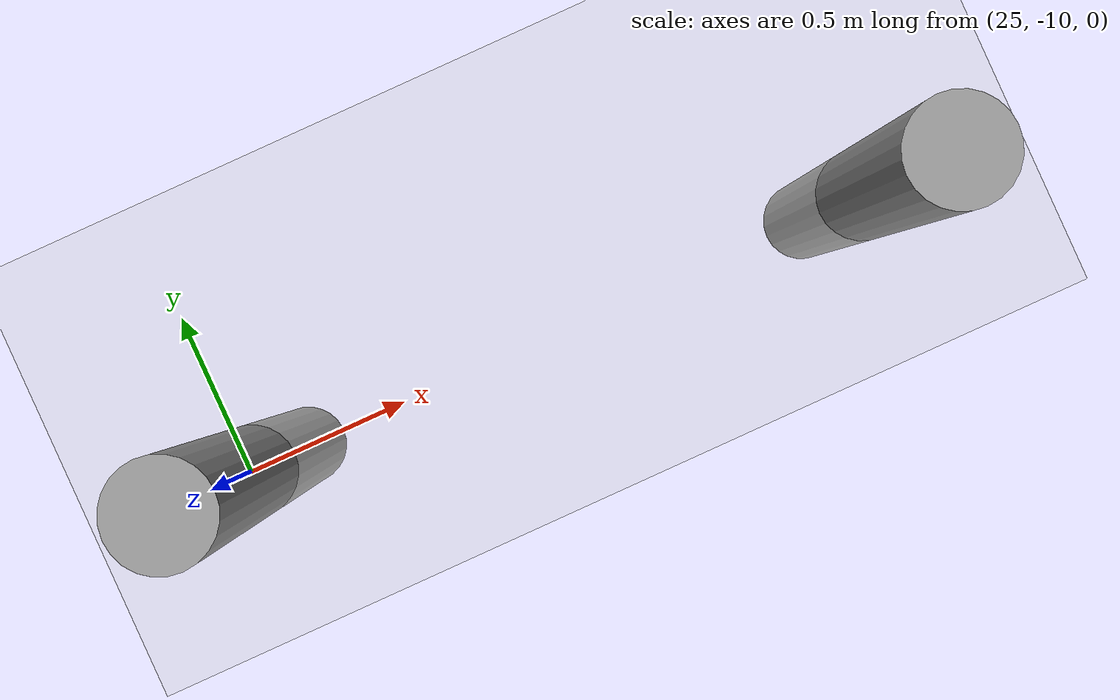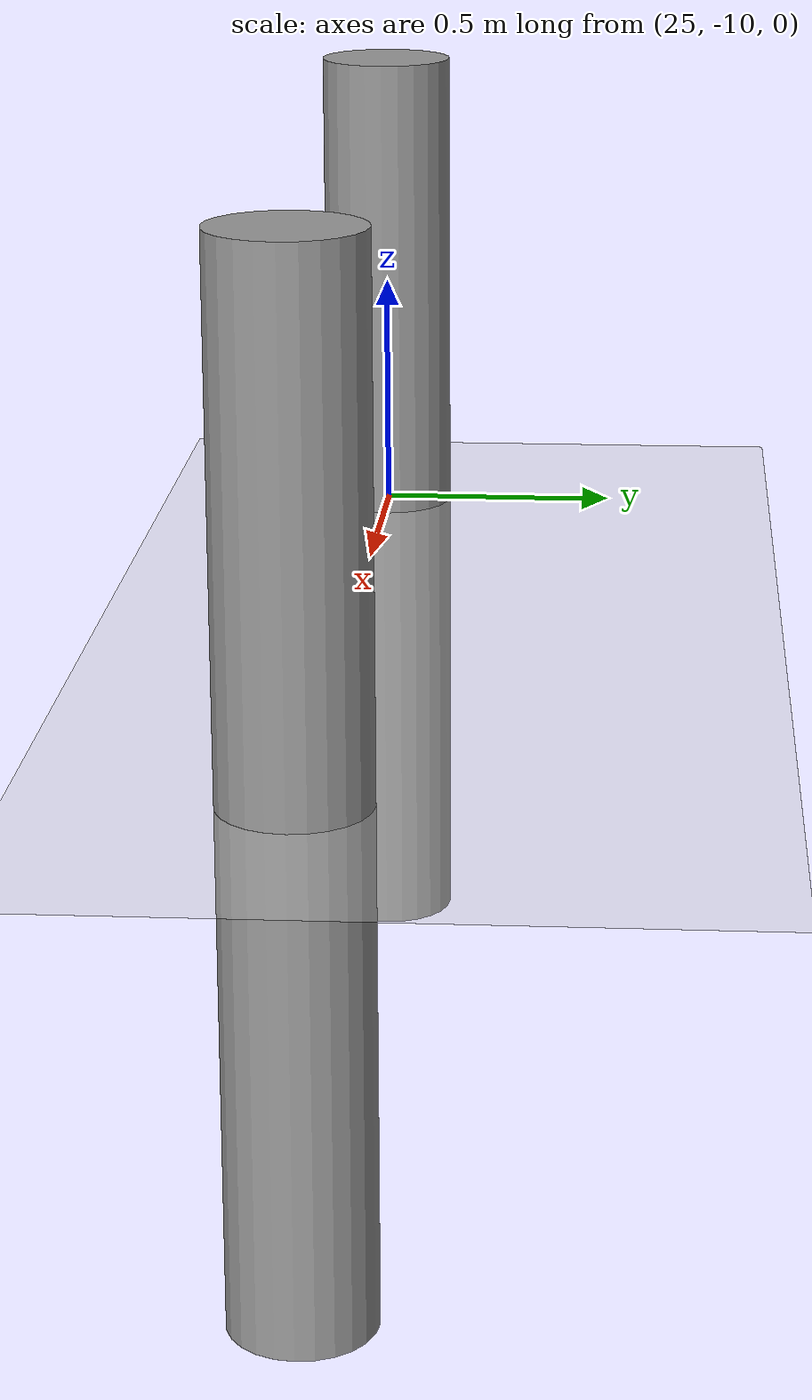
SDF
<sdf version="1.6">
 <world name="default">
  <model name="ground_plane">
   <static>1</static>
   <link name="link">
    <collision name="collision">
     <geometry><plane><normal>0 0 1</normal><size>100 100</size></plane></geometry>
     <surface><friction><ode><mu>100</mu><mu2>50</mu2></ode></friction></surface>
    </collision>
    <visual name="visual">
     <cast_shadows>0</cast_shadows>
     <geometry><plane><normal>0 0 1</normal><size>100 100</size></plane></geometry>
     <material>
      <script><uri>file://media/materials/scripts/gazebo.material</uri><name>Gazebo/Grey</name></script>
     </material>
    </visual>
   </link>
  </model>
  <model name="my_cylinder014_clone_5_0">
   <pose>27 -10 0 0 -0 0</pose>
   <link name="my_cylinder014::link">
    <inertial>
     <mass>1</mass>
     <inertia><ixx>0.145833</ixx><ixy>0</ixy><ixz>0</ixz><iyy>0.145833</iyy><iyz>0</iyz><izz>0.125</izz></inertia>
    </inertial>
    <visual name="visual">
     <geometry><cylinder><radius>0.14</radius><length>2</length></cylinder></geometry>
     <material>
      <script><name>Gazebo/Grey</name><uri>file://media/materials/scripts/gazebo.material</uri></script>
      <ambient>0.3 0.3 0.3 1</ambient>
      <diffuse>0.7 0.7 0.7 1</diffuse>
      <specular>1 0.01 0.01 1</specular>
      <emissive>0 0 0 1</emissive>
      <shader type="vertex"><normal_map>__default__</normal_map></shader>
     </material>
    </visual>
    <collision name="collision">
     <geometry><cylinder><radius>0.14</radius><length>2</length></cylinder></geometry>
     <surface>
      <friction>
       <ode><mu>1</mu><mu2>1</mu2><fdir1>0 0 0</fdir1><slip1>0</slip1><slip2>0</slip2></ode>
       <torsional>
        <coefficient>1</coefficient>
        <patch_radius>0</patch_radius>
        <surface_radius>0</surface_radius>
        <use_patch_radius>1</use_patch_radius>
        <ode><slip>0</slip></ode>
       </torsional>
      </friction>
      <bounce><restitution_coefficient>0</restitution_coefficient><threshold>1e+06</threshold></bounce>
      <contact>
       <collide_without_contact>0</collide_without_contact>
       <collide_without_contact_bitmask>1</collide_without_contact_bitmask>
       <collide_bitmask>1</collide_bitmask>
       <ode>
        <soft_cfm>0</soft_cfm>
        <soft_erp>0.2</soft_erp>
        <kp>1e+13</kp>
        <kd>1</kd>
        <max_vel>0.01</max_vel>
        <min_depth>0</min_depth>
       </ode>
       <bullet>
        <split_impulse>1</split_impulse>
        <split_impulse_penetration_threshold>-0.01</split_impulse_penetration_threshold>
        <soft_cfm>0</soft_cfm>
        <soft_erp>0.2</soft_erp>
        <kp>1e+13</kp>
        <kd>1</kd>
       </bullet>
      </contact>
     </surface>
    </collision>
   </link>
   <static>1</static>
  </model>
  <model name="my_cylinder014_clone_4_1">
   <pose>25 -10 0 0 -0 0</pose>
   <link name="my_cylinder014::link">
    <inertial>
     <mass>1</mass>
     <inertia><ixx>0.145833</ixx><ixy>0</ixy><ixz>0</ixz><iyy>0.145833</iyy><iyz>0</iyz><izz>0.125</izz></inertia>
    </inertial>
    <visual name="visual">
     <geometry><cylinder><radius>0.14</radius><length>2</length></cylinder></geometry>
     <material>
      <script><name>Gazebo/Grey</name><uri>file://media/materials/scripts/gazebo.material</uri></script>
      <ambient>0.3 0.3 0.3 1</ambient>
      <diffuse>0.7 0.7 0.7 1</diffuse>
      <specular>1 0.01 0.01 1</specular>
      <emissive>0 0 0 1</emissive>
      <shader type="vertex"><normal_map>__default__</normal_map></shader>
     </material>
    </visual>
    <collision name="collision">
     <geometry><cylinder><radius>0.14</radius><length>2</length></cylinder></geometry>
     <surface>
      <friction>
       <ode><mu>1</mu><mu2>1</mu2><fdir1>0 0 0</fdir1><slip1>0</slip1><slip2>0</slip2></ode>
       <torsional>
        <coefficient>1</coefficient>
        <patch_radius>0</patch_radius>
        <surface_radius>0</surface_radius>
        <use_patch_radius>1</use_patch_radius>
        <ode><slip>0</slip></ode>
       </torsional>
      </friction>
      <bounce><restitution_coefficient>0</restitution_coefficient><threshold>1e+06</threshold></bounce>
      <contact>
       <collide_without_contact>0</collide_without_contact>
       <collide_without_contact_bitmask>1</collide_without_contact_bitmask>
       <collide_bitmask>1</collide_bitmask>
       <ode>
        <soft_cfm>0</soft_cfm>
        <soft_erp>0.2</soft_erp>
        <kp>1e+13</kp>
        <kd>1</kd>
        <max_vel>0.01</max_vel>
        <min_depth>0</min_depth>
       </ode>
       <bullet>
        <split_impulse>1</split_impulse>
        <split_impulse_penetration_threshold>-0.01</split_impulse_penetration_threshold>
        <soft_cfm>0</soft_cfm>
        <soft_erp>0.2</soft_erp>
        <kp>1e+13</kp>
        <kd>1</kd>
       </bullet>
      </contact>
     </surface>
    </collision>
   </link>
   <static>1</static>
  </model>
  <model name="my_cylinder014_clone_4_1">
   <pose>25 -10 0 0 -0 0</pose>
   <link name="my_cylinder014::link">
    <inertial>
     <mass>1</mass>
     <inertia><ixx>0.145833</ixx><ixy>0</ixy><ixz>0</ixz><iyy>0.145833</iyy><iyz>0</iyz><izz>0.125</izz></inertia>
    </inertial>
    <visual name="visual">
     <geometry><cylinder><radius>0.14</radius><length>2</length></cylinder></geometry>
     <material>
      <script><name>Gazebo/Grey</name><uri>file://media/materials/scripts/gazebo.material</uri></script>
      <ambient>0.3 0.3 0.3 1</ambient>
      <diffuse>0.7 0.7 0.7 1</diffuse>
      <specular>1 0.01 0.01 1</specular>
      <emissive>0 0 0 1</emissive>
      <shader type="vertex"><normal_map>__default__</normal_map></shader>
     </material>
    </visual>
    <collision name="collision">
     <geometry><cylinder><radius>0.14</radius><length>2</length></cylinder></geometry>
     <surface>
      <friction>
       <ode><mu>1</mu><mu2>1</mu2><fdir1>0 0 0</fdir1><slip1>0</slip1><slip2>0</slip2></ode>
       <torsional>
        <coefficient>1</coefficient>
        <patch_radius>0</patch_radius>
        <surface_radius>0</surface_radius>
        <use_patch_radius>1</use_patch_radius>
        <ode><slip>0</slip></ode>
       </torsional>
      </friction>
      <bounce><restitution_coefficient>0</restitution_coefficient><threshold>1e+06</threshold></bounce>
      <contact>
       <collide_without_contact>0</collide_without_contact>
       <collide_without_contact_bitmask>1</collide_without_contact_bitmask>
       <collide_bitmask>1</collide_bitmask>
       <ode>
        <soft_cfm>0</soft_cfm>
        <soft_erp>0.2</soft_erp>
        <kp>1e+13</kp>
        <kd>1</kd>
        <max_vel>0.01</max_vel>
        <min_depth>0</min_depth>
       </ode>
       <bullet>
        <split_impulse>1</split_impulse>
        <split_impulse_penetration_threshold>-0.01</split_impulse_penetration_threshold>
        <soft_cfm>0</soft_cfm>
        <soft_erp>0.2</soft_erp>
        <kp>1e+13</kp>
        <kd>1</kd>
       </bullet>
      </contact>
     </surface>
    </collision>
   </link>
   <static>1</static>
  </model>
 </world>
</sdf>
